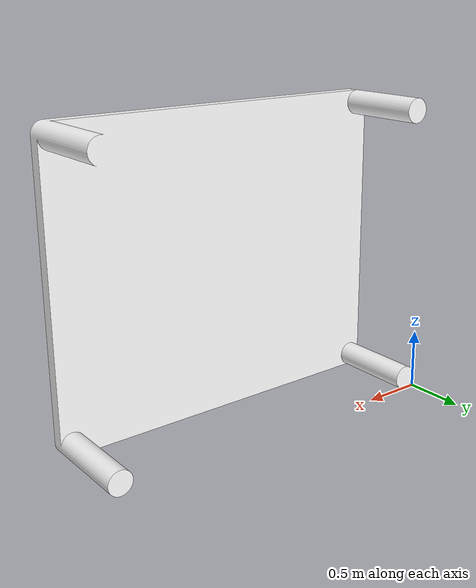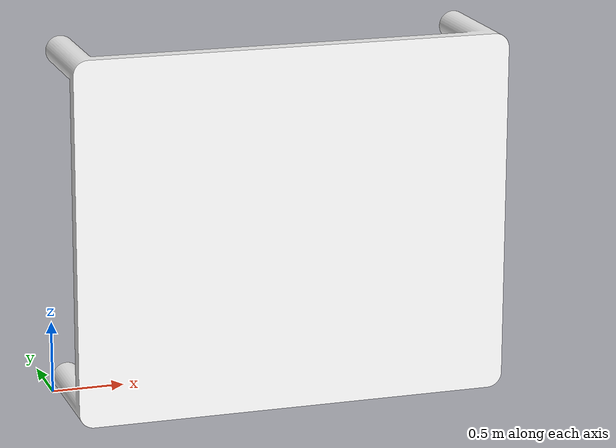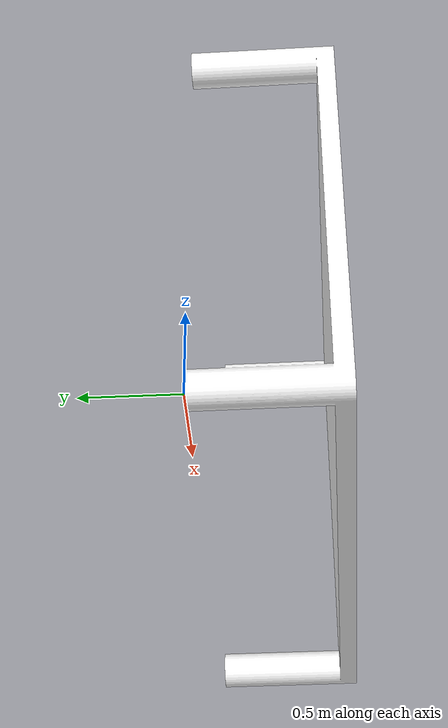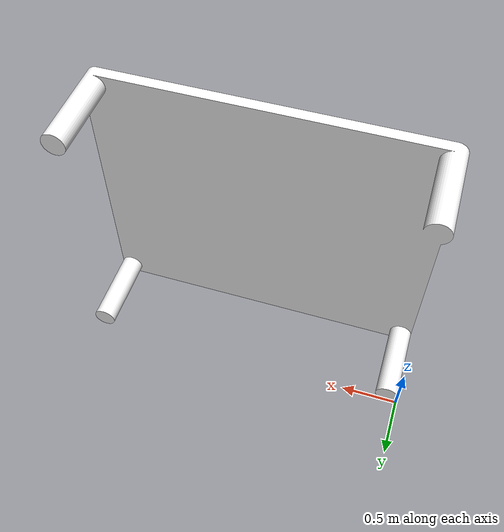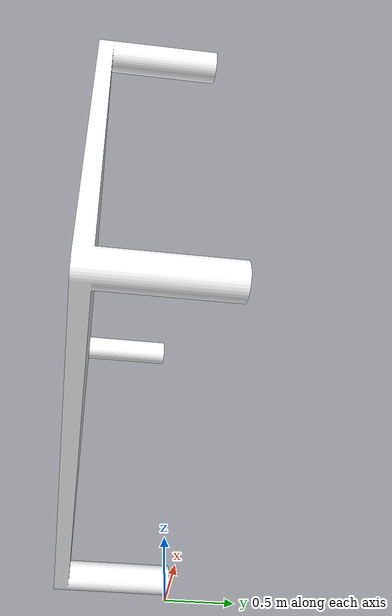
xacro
<?xml version="1.0"?>
<!-- Revolute-Revolute Manipulator -->
<robot name="table" xmlns:xacro="http://www.ros.org/wiki/xacro">
  <link
    name="Part3">
    <inertial>
      <origin
        xyz="1.5 -0.70814 1.25"
        rpy="0 0 0" />
      <mass
        value="133.86" />
      <inertia
        ixx="83.5289649876592"
        ixy="0.000337680008693867"
        ixz="-0.000166551668681548"
        iyy="198.035770651431"
        iyz="0.000107991352591679"
        izz="119.864599396338" />
    </inertial>
    <visual>
      <origin
        xyz="0 0 0"
        rpy="1.5707963267949 0 0" />
      <geometry>
        <mesh
          filename="package://robo/meshes/Part3.STL" />
      </geometry>
      <material
        name="">
        <color
          rgba="1 1 1 1" />
      </material>
    </visual>
    <collision>
      <origin
        xyz="0 0 0"
        rpy="1.5707963267949 0 0" />
      <geometry>
        <mesh
          filename="package://robo/meshes/Part3.STL" />
      </geometry>
    </collision>
  </link>
<gazebo reference="Part3">
    <material>Gazebo/Orange</material>
  </gazebo>

</robot>
